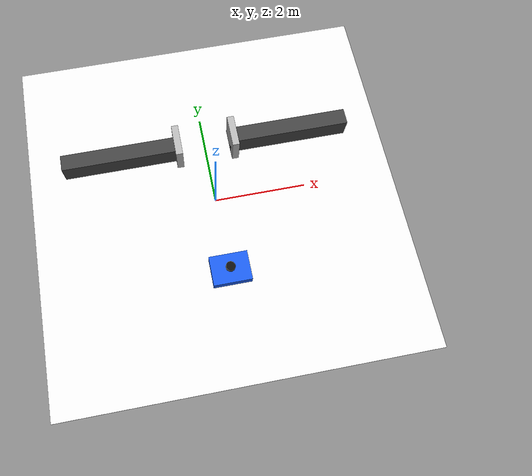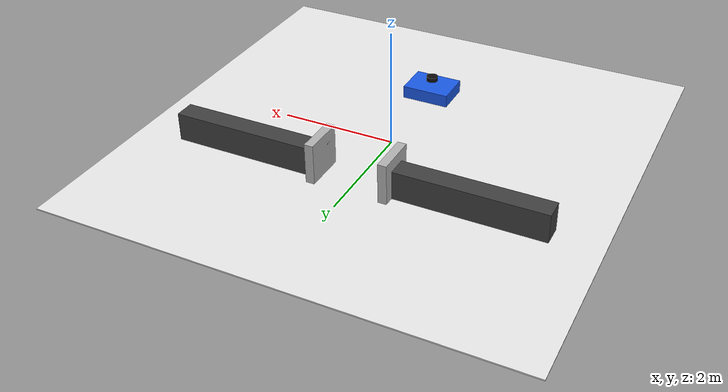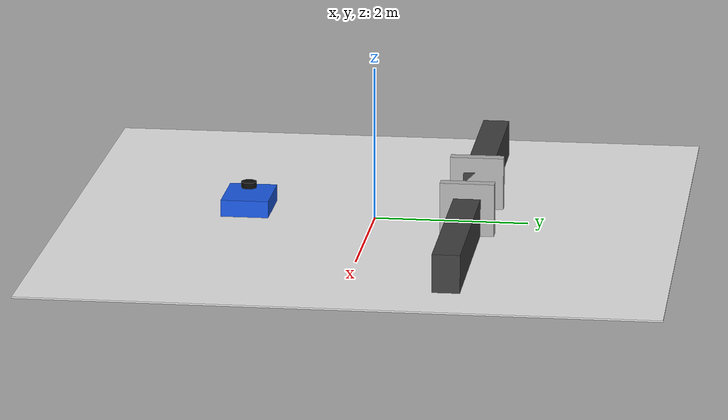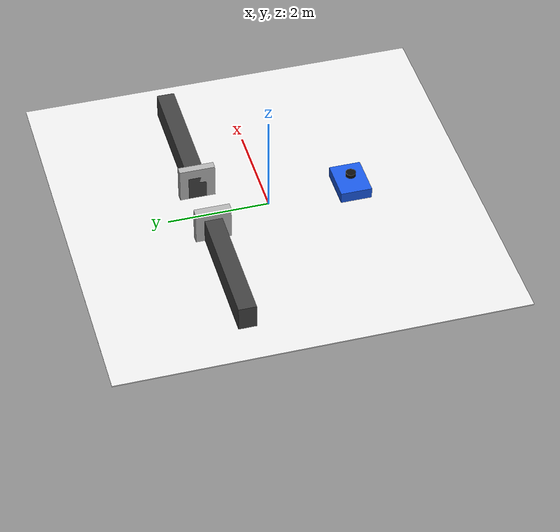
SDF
<?xml version="1.0" ?>
<sdf version="1.9">
  <world name="narrow_doorway_world">
    <scene>
      <ambient>0.75 0.75 0.75 1</ambient>
      <background>0.98 0.98 0.98 1</background>
    </scene>
    <light type="directional" name="sun">
      <pose>0 0 8 0 0 0</pose>
      <diffuse>0.9 0.9 0.9 1</diffuse>
      <direction>-0.5 0.3 -1</direction>
    </light>
    <model name="ground_plane">
      <static>true</static>
      <link name="link">
        <collision name="collision"><geometry><box><size>8 8 0.02</size></box></geometry></collision>
        <visual name="visual"><geometry><box><size>8 8 0.02</size></box></geometry>
        <material><ambient>0.92 0.92 0.92 1</ambient><diffuse>0.92 0.92 0.92 1</diffuse></material></visual>
      </link>
    </model>
    <model name="left_wall"><static>true</static><pose>-1.875 1.275 0.25 0 0 0</pose>
      <link name="link"><collision name="collision"><geometry><box><size>2.65 0.35 0.5</size></box></geometry></collision>
      <visual name="visual"><geometry><box><size>2.65 0.35 0.5</size></box></geometry>
      <material><ambient>0.25 0.25 0.25 1</ambient><diffuse>0.25 0.25 0.25 1</diffuse></material></visual></link>
    </model>
    <model name="right_wall"><static>true</static><pose>1.875 1.275 0.25 0 0 0</pose>
      <link name="link"><collision name="collision"><geometry><box><size>2.65 0.35 0.5</size></box></geometry></collision>
      <visual name="visual"><geometry><box><size>2.65 0.35 0.5</size></box></geometry>
      <material><ambient>0.25 0.25 0.25 1</ambient><diffuse>0.25 0.25 0.25 1</diffuse></material></visual></link>
    </model>
    <model name="left_door_frame"><static>true</static><pose>-0.625 1.275 0.35 0 0 0</pose>
      <link name="link"><collision name="collision"><geometry><box><size>0.15 0.70 0.70</size></box></geometry></collision>
      <visual name="visual"><geometry><box><size>0.15 0.70 0.70</size></box></geometry>
      <material><ambient>0.70 0.70 0.70 1</ambient><diffuse>0.70 0.70 0.70 1</diffuse></material></visual></link>
    </model>
    <model name="right_door_frame"><static>true</static><pose>0.625 1.275 0.35 0 0 0</pose>
      <link name="link"><collision name="collision"><geometry><box><size>0.15 0.70 0.70</size></box></geometry></collision>
      <visual name="visual"><geometry><box><size>0.15 0.70 0.70</size></box></geometry>
      <material><ambient>0.70 0.70 0.70 1</ambient><diffuse>0.70 0.70 0.70 1</diffuse></material></visual></link>
    </model>
    <model name="rangermini_2_0_visual_initial"><static>true</static><pose>0 -1.65 0.18 0 0 1.5708</pose>
      <link name="base_link">
        <visual name="body"><geometry><box><size>0.62 0.82 0.22</size></box></geometry>
        <material><ambient>0.1 0.35 0.9 1</ambient><diffuse>0.1 0.35 0.9 1</diffuse></material></visual>
        <visual name="lidar"><pose>0 0 0.22 0 0 0</pose>
        <geometry><cylinder><radius>0.10</radius><length>0.08</length></cylinder></geometry>
        <material><ambient>0.05 0.05 0.05 1</ambient><diffuse>0.05 0.05 0.05 1</diffuse></material></visual>
      </link>
    </model>
  </world>
</sdf>
